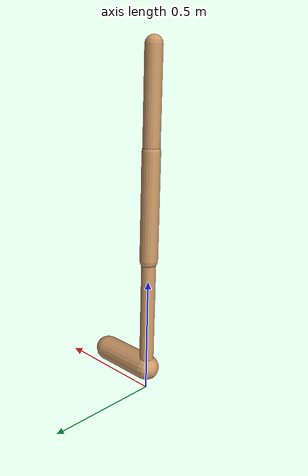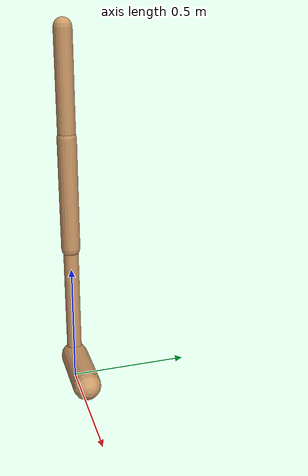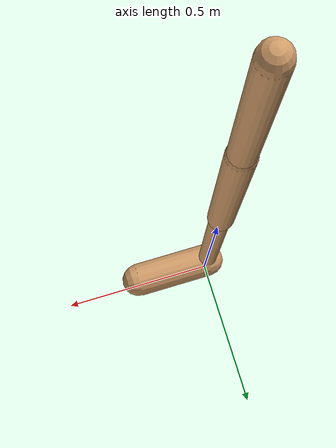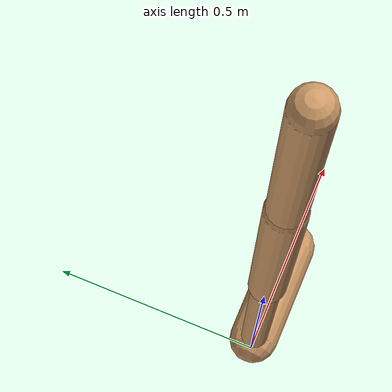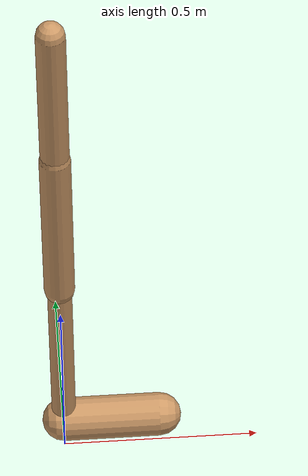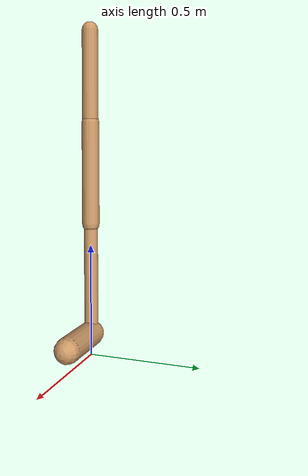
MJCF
<mujoco model="walker2d">
  <compiler angle="degree" coordinate="global" inertiafromgeom="true" />
  <default>
    <joint armature="0.01" damping=".1" limited="true" />
    <geom conaffinity="0" condim="3" contype="1" density="1000" friction="0.8 .1 .1" rgba="0.8 0.6 .4 1" />
  </default>
  <option integrator="RK4" timestep="0.002" />
  <worldbody>

    <body name="torso" pos="0 0 0.0037354922926114116">
      <joint armature="0" axis="1 0 0" damping="0" limited="false" name="ignorex" pos="0 0 0" stiffness="0" type="slide" />
      <joint armature="0" axis="0 0 1" damping="0" limited="false" name="ignorez" pos="0 0 0" ref="1.25" stiffness="0" type="slide" />
      <joint armature="0" axis="0 1 0" damping="0" limited="false" name="ignorey" pos="0 0 0" stiffness="0" type="hinge" />
      <geom fromto="0 0 1.45 0 0 1.05" name="torso_geom" size="0.03546358465781784" type="capsule" />
      <body name="thigh">
        <joint axis="0 -1 0" name="thigh_joint" pos="0 0 1.05" range="-150 0" type="hinge" />
        <geom fromto="0.0 0.0 1.05 0.0 0.0 0.5982305562824473" name="thigh_geom" size="0.03835509653091482" type="capsule" />
        <body name="leg" pos="0.0 0.0 -0.0017694437175527211">
          <joint axis="0 -1 0" name="leg_joint" pos="0 0 0.6" range="-150 0" type="hinge" />
          <geom fromto="0.0 0.0 0.6 0.0 0.0 0.09803395142494137" name="leg_geom" size="0.030684077224731852" type="capsule" />
          <body name="foot" pos="0.0 0.0 -0.0019660485750586376">
            <joint axis="0 -1 0" name="foot_joint" pos="0 0 0.1" range="-45 45" type="hinge" />
            <geom fromto="-0.0 0.0 0.1 0.2461101501029993 0.0 0.1" name="foot_geom" size="0.05596743952406027" type="capsule" />
          </body>
        </body>
      </body>

      <body name="thigh_left">
        <joint axis="0 -1 0" name="thigh_left_joint" pos="0 0 1.05" range="-150 0" type="hinge" />
        <geom fromto="0.0 0.0 1.05 0.0 0.0 0.5982305562824473" name="thigh_left_geom" rgba=".7 .3 .6 1" size="0.03835509653091482" type="capsule" />
        <body name="leg_left" pos="0.0 0.0 -0.0017694437175527211">
          <joint axis="0 -1 0" name="leg_left_joint" pos="0 0 0.6" range="-150 0" type="hinge" />
          <geom fromto="0.0 0.0 0.6 0.0 0.0 0.09803395142494137" name="leg_left_geom" rgba=".7 .3 .6 1" size="0.030684077224731852" type="capsule" />
          <body name="foot_left" pos="0.0 0.0 -0.0019660485750586376">
            <joint axis="0 -1 0" name="foot_left_joint" pos="0 0 0.1" range="-45 45" type="hinge" />
            <geom fromto="-0.0 0.0 0.1 0.2461101501029993 0.0 0.1" name="foot_left_geom" rgba=".7 .3 .6 1" size="0.05596743952406027" type="capsule" />
          </body>
        </body>
      </body>
    </body>
  </worldbody>
  <actuator>

    <motor ctrllimited="true" ctrlrange="-1.0 1.0" gear="100" joint="thigh_joint" />
    <motor ctrllimited="true" ctrlrange="-1.0 1.0" gear="100" joint="leg_joint" />
    <motor ctrllimited="true" ctrlrange="-1.0 1.0" gear="100" joint="foot_joint" />
    <motor ctrllimited="true" ctrlrange="-1.0 1.0" gear="100" joint="thigh_left_joint" />
    <motor ctrllimited="true" ctrlrange="-1.0 1.0" gear="100" joint="leg_left_joint" />
    <motor ctrllimited="true" ctrlrange="-1.0 1.0" gear="100" joint="foot_left_joint" />

  </actuator>
</mujoco>
